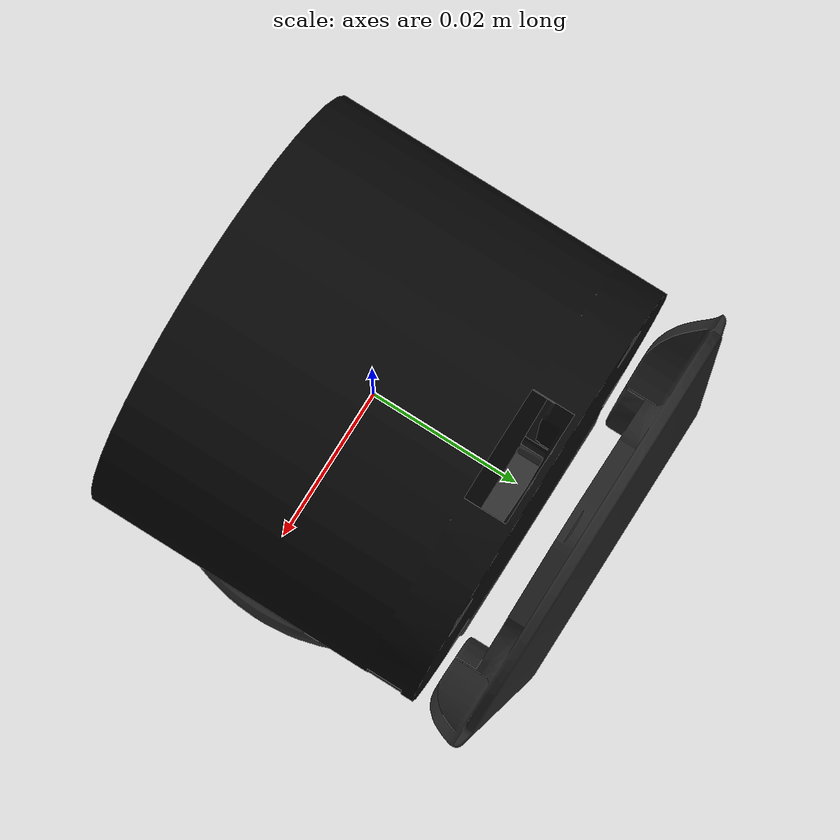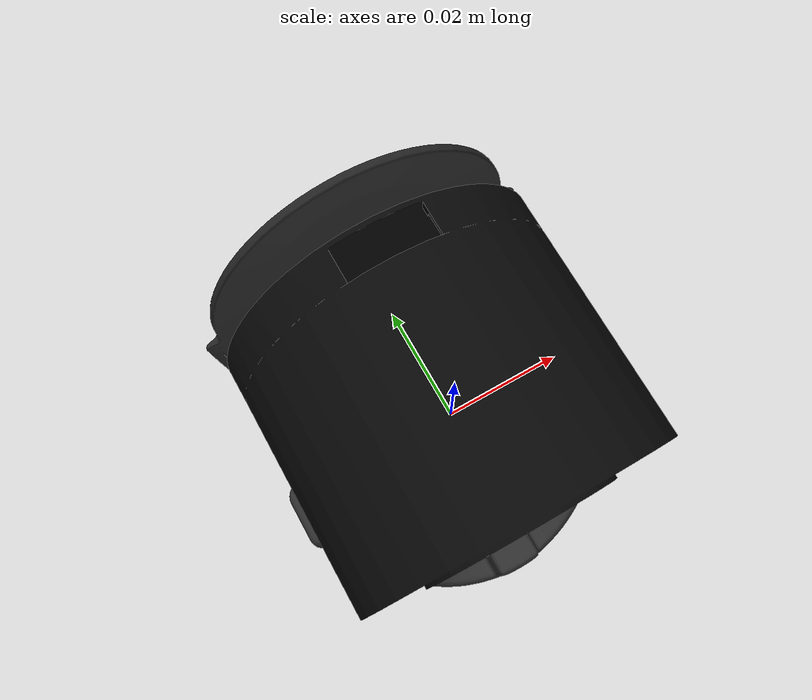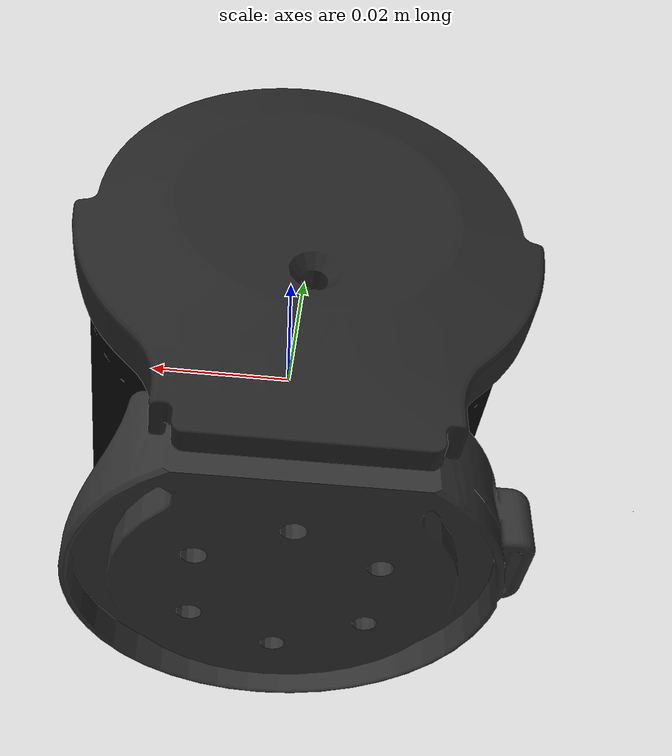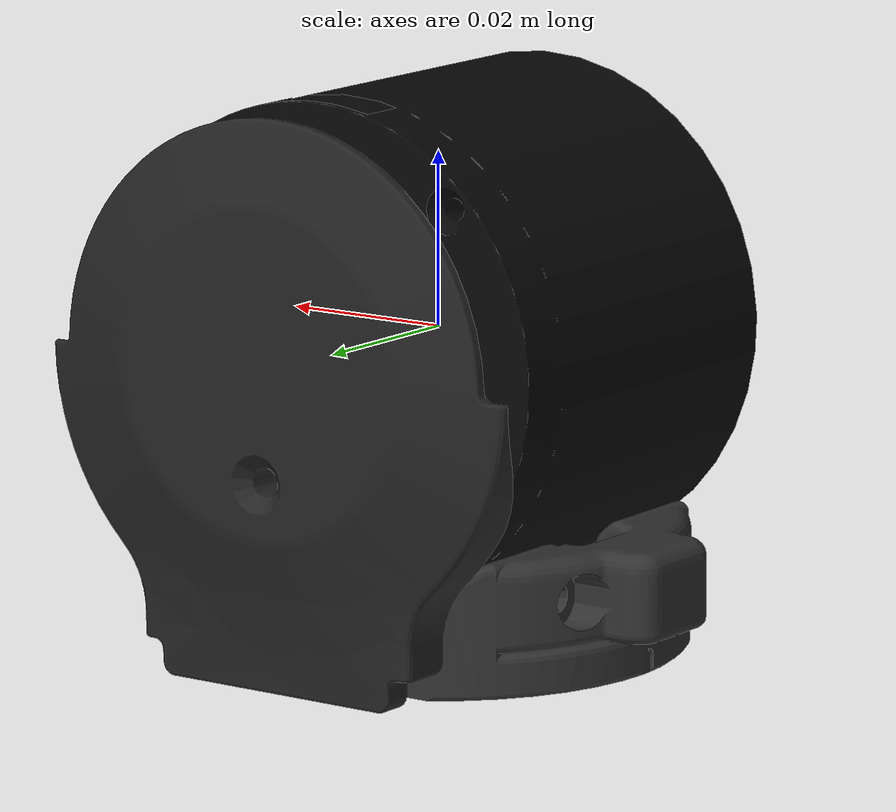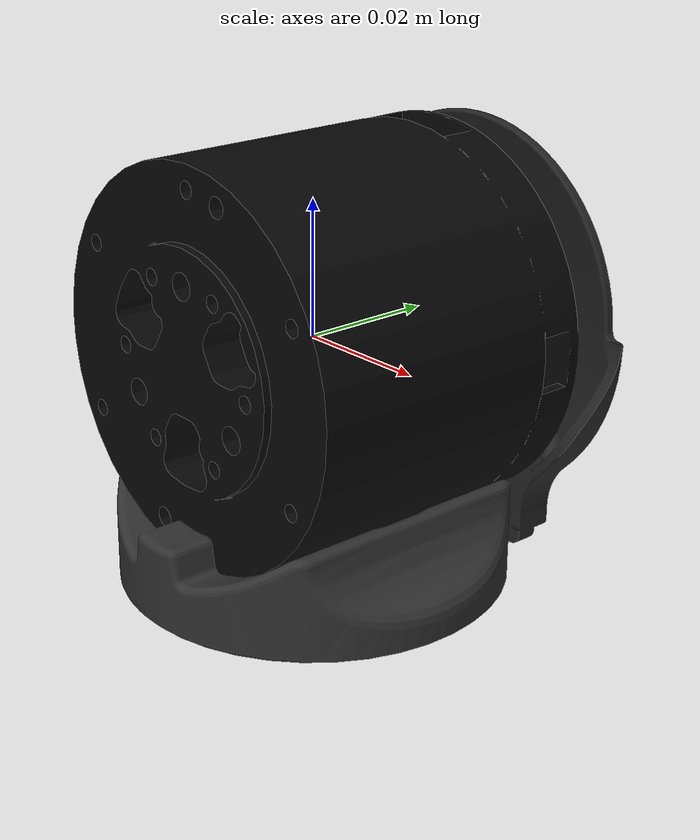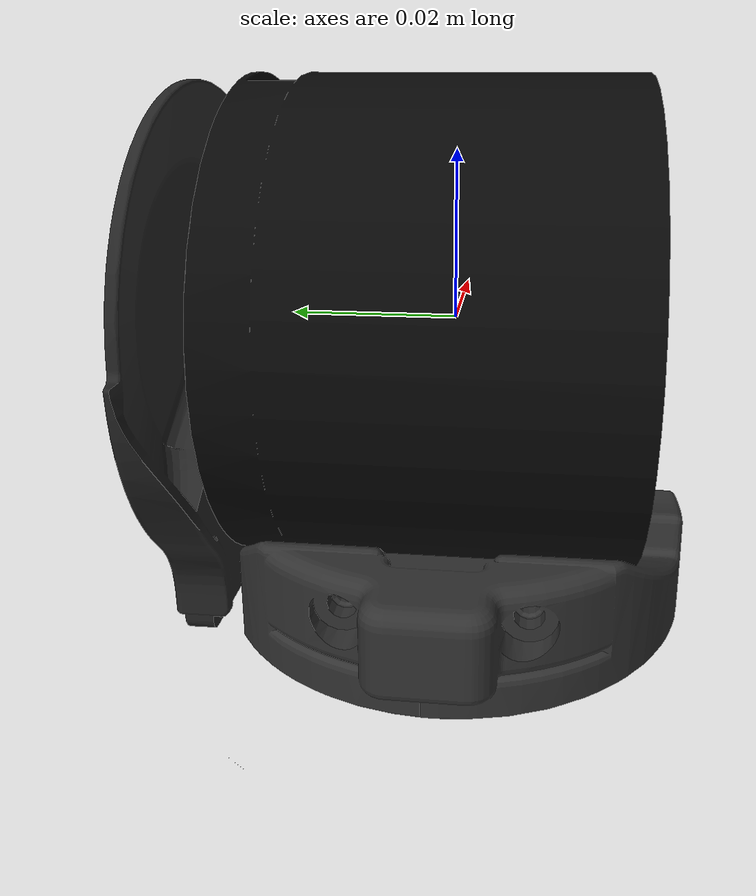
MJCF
<mujoco model="link4">
  <default>
    <default class="visual">
      <geom group="2" type="mesh" contype="0" conaffinity="0"/>
    </default>
    <default class="collision">
      <geom group="3" type="mesh"/>
    </default>
  </default>
  <asset>
    <material name="Material-塑胶__1_.028" specular="0.0" shininess="0.25" rgba="0.141176 0.141176 0.141176 1.000000"/>
    <material name="Material-金属.005" specular="0.0" shininess="0.25" rgba="0.000000 0.000000 0.000000 1.000000"/>
    <material name="black_metal.009" specular="0.5" shininess="0.09604875199999999" rgba="0.030034 0.030034 0.030034 1.000000"/>
    <material name="grey_metal.003" specular="0.5" shininess="0.09604875199999999" rgba="0.191349 0.191349 0.191349 1.000000"/>
    <mesh file="link4_0.obj"/>
    <mesh file="link4_1.obj"/>
    <mesh file="link4_2.obj"/>
    <mesh file="link4_3.obj"/>
    <mesh file="link4_collision_0.obj"/>
    <mesh file="link4_collision_1.obj"/>
    <mesh file="link4_collision_2.obj"/>
    <mesh file="link4_collision_3.obj"/>
  </asset>
  <worldbody>
    <body name="link4">
      <geom mesh="link4_0" material="Material-金属.005" class="visual"/>
      <geom mesh="link4_1" material="Material-塑胶__1_.028" class="visual"/>
      <geom mesh="link4_2" material="black_metal.009" class="visual"/>
      <geom mesh="link4_3" material="grey_metal.003" class="visual"/>
      <geom mesh="link4_collision_0" rgba="0.482162828998263 0.5387579592520033 0.4822554960989096 1" class="collision"/>
      <geom mesh="link4_collision_1" rgba="0.4119545314354195 0.711933529724431 0.6792704425345707 1" class="collision"/>
      <geom mesh="link4_collision_2" rgba="0.6369400223065455 0.9376182372013755 0.26538187683140146 1" class="collision"/>
      <geom mesh="link4_collision_3" rgba="0.6733805615246544 0.6698829230783278 0.34872984810317387 1" class="collision"/>
    </body>
  </worldbody>
</mujoco>
